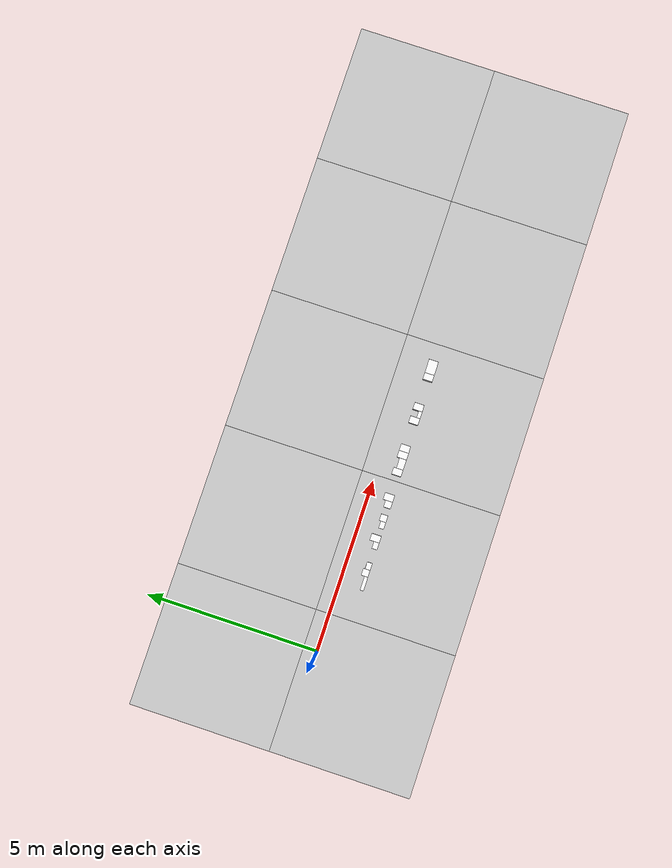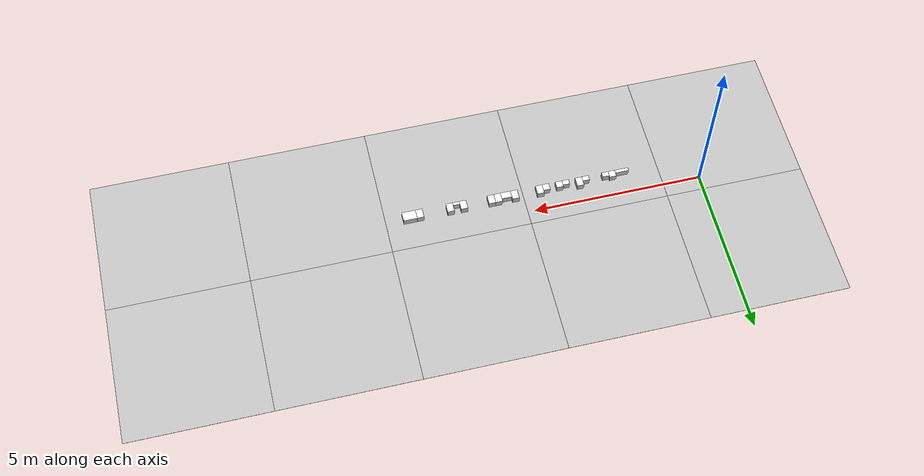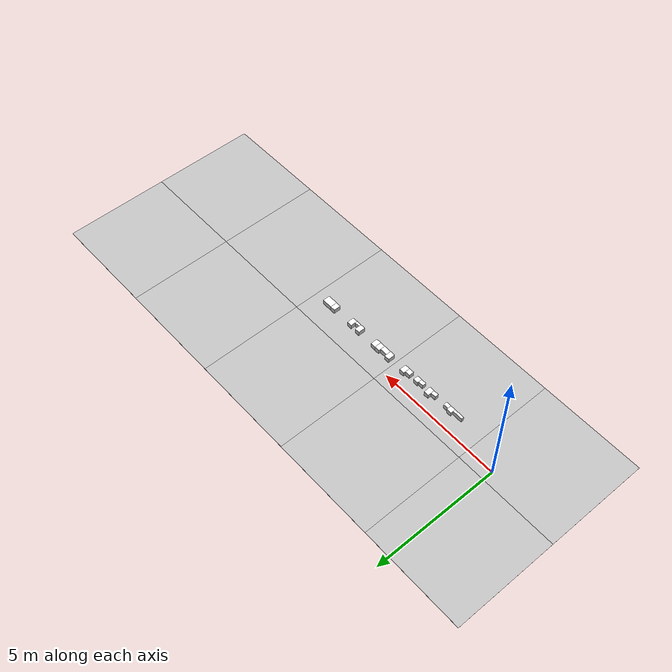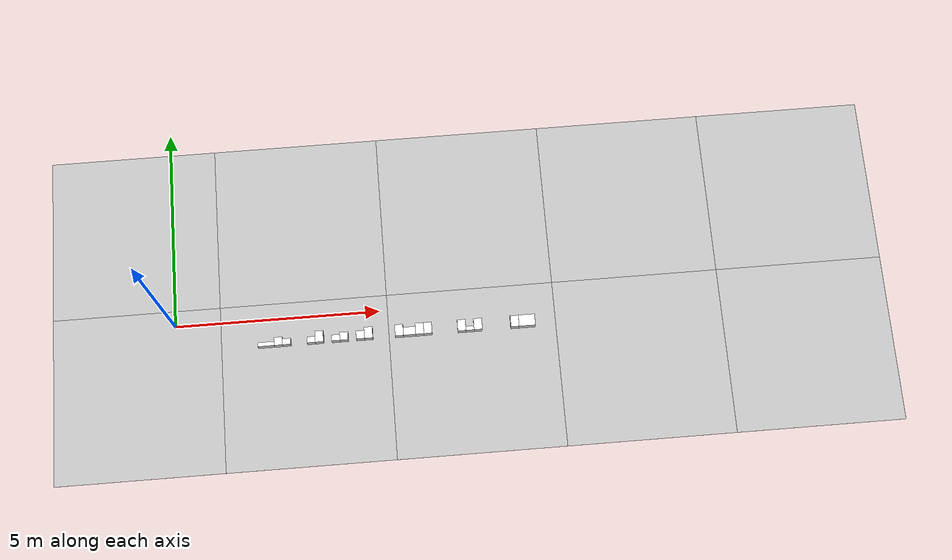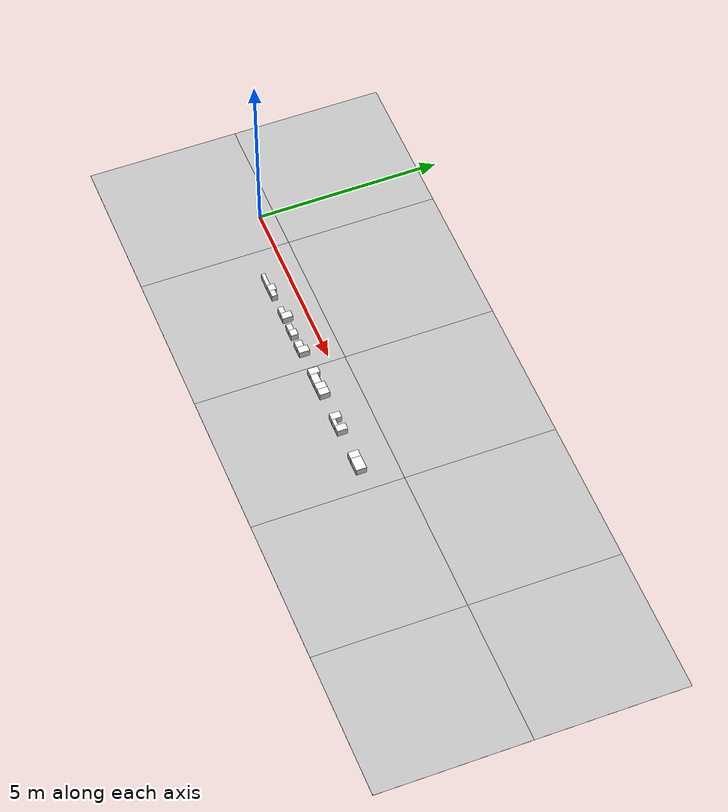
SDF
<sdf version='1.6'><world name='default'>
    <light name='sun_light' type='directional'>
      <pose frame=''>0 0 10 0 -0 0</pose>
      <diffuse>0.5 0.5 0.5 1</diffuse>
      <specular>0.1 0.1 0.1 1</specular>
      <direction>0.1 0.1 -0.9</direction>
      <attenuation>
        <range>20</range>
        <constant>0.5</constant>
        <linear>0.01</linear>
        <quadratic>0.001</quadratic>
      </attenuation>
      <cast_shadows>1</cast_shadows>
    </light>

    <model name='Tile/0-0'>
      <static>1</static>
      <link name='link'>
        <collision name='collision'>
          <geometry>
            <plane>
              <normal>0 0 1</normal>
              <size>4.096 4.096</size>
            </plane>
          </geometry>
          <surface>
            <friction>
              <ode>
                <mu>100</mu>
                <mu2>50</mu2>
              </ode>
              <torsional>
                <ode/>
              </torsional>
            </friction>
            <contact>
              <ode/>
            </contact>
            <bounce/>
          </surface>
          <max_contacts>10</max_contacts>
        </collision>
        <visual name='visual'>
          <cast_shadows>0</cast_shadows>
          <geometry>
            <plane>
              <normal>0 0 1</normal>
              <size>4.096 4.096</size>
            </plane>
          </geometry>
          <material>
            <script>
              <uri>file://materials/scripts</uri>
              <uri>file://materials/textures</uri>
              <name>Tile/aa44efc093d15b0d016b671cb8dad8b9b5925cd42bc6b331ef31decf4ba6863e</name>
            </script>
          </material>
        </visual>
        <self_collide>0</self_collide>
        <enable_wind>0</enable_wind>
        <kinematic>0</kinematic>
      </link>
      <pose frame=''>-0.952 -1.6520000000000001 0 0 -0 0</pose>
    </model>

    <model name='Tile/0-1'>
      <static>1</static>
      <link name='link'>
        <collision name='collision'>
          <geometry>
            <plane>
              <normal>0 0 1</normal>
              <size>4.096 4.096</size>
            </plane>
          </geometry>
          <surface>
            <friction>
              <ode>
                <mu>100</mu>
                <mu2>50</mu2>
              </ode>
              <torsional>
                <ode/>
              </torsional>
            </friction>
            <contact>
              <ode/>
            </contact>
            <bounce/>
          </surface>
          <max_contacts>10</max_contacts>
        </collision>
        <visual name='visual'>
          <cast_shadows>0</cast_shadows>
          <geometry>
            <plane>
              <normal>0 0 1</normal>
              <size>4.096 4.096</size>
            </plane>
          </geometry>
          <material>
            <script>
              <uri>file://materials/scripts</uri>
              <uri>file://materials/textures</uri>
              <name>Tile/6681b896b1587d54cb69aadeb5fb7247b4d6d500490292053e67105ac88ca889</name>
            </script>
          </material>
        </visual>
        <self_collide>0</self_collide>
        <enable_wind>0</enable_wind>
        <kinematic>0</kinematic>
      </link>
      <pose frame=''>-0.952 2.444 0 0 -0 0</pose>
    </model>

    <model name='Tile/1-0'>
      <static>1</static>
      <link name='link'>
        <collision name='collision'>
          <geometry>
            <plane>
              <normal>0 0 1</normal>
              <size>4.096 4.096</size>
            </plane>
          </geometry>
          <surface>
            <friction>
              <ode>
                <mu>100</mu>
                <mu2>50</mu2>
              </ode>
              <torsional>
                <ode/>
              </torsional>
            </friction>
            <contact>
              <ode/>
            </contact>
            <bounce/>
          </surface>
          <max_contacts>10</max_contacts>
        </collision>
        <visual name='visual'>
          <cast_shadows>0</cast_shadows>
          <geometry>
            <plane>
              <normal>0 0 1</normal>
              <size>4.096 4.096</size>
            </plane>
          </geometry>
          <material>
            <script>
              <uri>file://materials/scripts</uri>
              <uri>file://materials/textures</uri>
              <name>Tile/067768fed152a856bd9031b7e36a3f99bebca5a5b10e7e607b28bbce7ae49069</name>
            </script>
          </material>
        </visual>
        <self_collide>0</self_collide>
        <enable_wind>0</enable_wind>
        <kinematic>0</kinematic>
      </link>
      <pose frame=''>3.144 -1.6520000000000001 0 0 -0 0</pose>
    </model>

    <model name='Tile/1-1'>
      <static>1</static>
      <link name='link'>
        <collision name='collision'>
          <geometry>
            <plane>
              <normal>0 0 1</normal>
              <size>4.096 4.096</size>
            </plane>
          </geometry>
          <surface>
            <friction>
              <ode>
                <mu>100</mu>
                <mu2>50</mu2>
              </ode>
              <torsional>
                <ode/>
              </torsional>
            </friction>
            <contact>
              <ode/>
            </contact>
            <bounce/>
          </surface>
          <max_contacts>10</max_contacts>
        </collision>
        <visual name='visual'>
          <cast_shadows>0</cast_shadows>
          <geometry>
            <plane>
              <normal>0 0 1</normal>
              <size>4.096 4.096</size>
            </plane>
          </geometry>
          <material>
            <script>
              <uri>file://materials/scripts</uri>
              <uri>file://materials/textures</uri>
              <name>Tile/13957a6de1f2afce18d7f1f64dacc2f21295e26ccf498256b0e1a51002cd5706</name>
            </script>
          </material>
        </visual>
        <self_collide>0</self_collide>
        <enable_wind>0</enable_wind>
        <kinematic>0</kinematic>
      </link>
      <pose frame=''>3.144 2.444 0 0 -0 0</pose>
    </model>

    <model name='Tile/2-0'>
      <static>1</static>
      <link name='link'>
        <collision name='collision'>
          <geometry>
            <plane>
              <normal>0 0 1</normal>
              <size>4.096 4.096</size>
            </plane>
          </geometry>
          <surface>
            <friction>
              <ode>
                <mu>100</mu>
                <mu2>50</mu2>
              </ode>
              <torsional>
                <ode/>
              </torsional>
            </friction>
            <contact>
              <ode/>
            </contact>
            <bounce/>
          </surface>
          <max_contacts>10</max_contacts>
        </collision>
        <visual name='visual'>
          <cast_shadows>0</cast_shadows>
          <geometry>
            <plane>
              <normal>0 0 1</normal>
              <size>4.096 4.096</size>
            </plane>
          </geometry>
          <material>
            <script>
              <uri>file://materials/scripts</uri>
              <uri>file://materials/textures</uri>
              <name>Tile/31910db87828066e4d83b3765506735c1ba0569ae206dd3eb5cb4004fe165efc</name>
            </script>
          </material>
        </visual>
        <self_collide>0</self_collide>
        <enable_wind>0</enable_wind>
        <kinematic>0</kinematic>
      </link>
      <pose frame=''>7.24 -1.6520000000000001 0 0 -0 0</pose>
    </model>

    <model name='Tile/2-1'>
      <static>1</static>
      <link name='link'>
        <collision name='collision'>
          <geometry>
            <plane>
              <normal>0 0 1</normal>
              <size>4.096 4.096</size>
            </plane>
          </geometry>
          <surface>
            <friction>
              <ode>
                <mu>100</mu>
                <mu2>50</mu2>
              </ode>
              <torsional>
                <ode/>
              </torsional>
            </friction>
            <contact>
              <ode/>
            </contact>
            <bounce/>
          </surface>
          <max_contacts>10</max_contacts>
        </collision>
        <visual name='visual'>
          <cast_shadows>0</cast_shadows>
          <geometry>
            <plane>
              <normal>0 0 1</normal>
              <size>4.096 4.096</size>
            </plane>
          </geometry>
          <material>
            <script>
              <uri>file://materials/scripts</uri>
              <uri>file://materials/textures</uri>
              <name>Tile/13957a6de1f2afce18d7f1f64dacc2f21295e26ccf498256b0e1a51002cd5706</name>
            </script>
          </material>
        </visual>
        <self_collide>0</self_collide>
        <enable_wind>0</enable_wind>
        <kinematic>0</kinematic>
      </link>
      <pose frame=''>7.24 2.444 0 0 -0 0</pose>
    </model>

    <model name='Tile/3-0'>
      <static>1</static>
      <link name='link'>
        <collision name='collision'>
          <geometry>
            <plane>
              <normal>0 0 1</normal>
              <size>4.096 4.096</size>
            </plane>
          </geometry>
          <surface>
            <friction>
              <ode>
                <mu>100</mu>
                <mu2>50</mu2>
              </ode>
              <torsional>
                <ode/>
              </torsional>
            </friction>
            <contact>
              <ode/>
            </contact>
            <bounce/>
          </surface>
          <max_contacts>10</max_contacts>
        </collision>
        <visual name='visual'>
          <cast_shadows>0</cast_shadows>
          <geometry>
            <plane>
              <normal>0 0 1</normal>
              <size>4.096 4.096</size>
            </plane>
          </geometry>
          <material>
            <script>
              <uri>file://materials/scripts</uri>
              <uri>file://materials/textures</uri>
              <name>Tile/abe61641e72e42510ec0c33382329821aa0ffdabd8bdd301795f6aacd2568930</name>
            </script>
          </material>
        </visual>
        <self_collide>0</self_collide>
        <enable_wind>0</enable_wind>
        <kinematic>0</kinematic>
      </link>
      <pose frame=''>11.336 -1.6520000000000001 0 0 -0 0</pose>
    </model>

    <model name='Tile/3-1'>
      <static>1</static>
      <link name='link'>
        <collision name='collision'>
          <geometry>
            <plane>
              <normal>0 0 1</normal>
              <size>4.096 4.096</size>
            </plane>
          </geometry>
          <surface>
            <friction>
              <ode>
                <mu>100</mu>
                <mu2>50</mu2>
              </ode>
              <torsional>
                <ode/>
              </torsional>
            </friction>
            <contact>
              <ode/>
            </contact>
            <bounce/>
          </surface>
          <max_contacts>10</max_contacts>
        </collision>
        <visual name='visual'>
          <cast_shadows>0</cast_shadows>
          <geometry>
            <plane>
              <normal>0 0 1</normal>
              <size>4.096 4.096</size>
            </plane>
          </geometry>
          <material>
            <script>
              <uri>file://materials/scripts</uri>
              <uri>file://materials/textures</uri>
              <name>Tile/9a638098c074a6a28d2b802bd76e24a7c94687fec106f022fc197313878202a5</name>
            </script>
          </material>
        </visual>
        <self_collide>0</self_collide>
        <enable_wind>0</enable_wind>
        <kinematic>0</kinematic>
      </link>
      <pose frame=''>11.336 2.444 0 0 -0 0</pose>
    </model>

    <model name='Tile/4-0'>
      <static>1</static>
      <link name='link'>
        <collision name='collision'>
          <geometry>
            <plane>
              <normal>0 0 1</normal>
              <size>4.096 4.096</size>
            </plane>
          </geometry>
          <surface>
            <friction>
              <ode>
                <mu>100</mu>
                <mu2>50</mu2>
              </ode>
              <torsional>
                <ode/>
              </torsional>
            </friction>
            <contact>
              <ode/>
            </contact>
            <bounce/>
          </surface>
          <max_contacts>10</max_contacts>
        </collision>
        <visual name='visual'>
          <cast_shadows>0</cast_shadows>
          <geometry>
            <plane>
              <normal>0 0 1</normal>
              <size>4.096 4.096</size>
            </plane>
          </geometry>
          <material>
            <script>
              <uri>file://materials/scripts</uri>
              <uri>file://materials/textures</uri>
              <name>Tile/5eab350b8220ac9944dbdfa4ac3288c7c17e24c3bf5df0dfcf6173d64dae00a1</name>
            </script>
          </material>
        </visual>
        <self_collide>0</self_collide>
        <enable_wind>0</enable_wind>
        <kinematic>0</kinematic>
      </link>
      <pose frame=''>15.431999999999999 -1.6520000000000001 0 0 -0 0</pose>
    </model>

    <model name='Tile/4-1'>
      <static>1</static>
      <link name='link'>
        <collision name='collision'>
          <geometry>
            <plane>
              <normal>0 0 1</normal>
              <size>4.096 4.096</size>
            </plane>
          </geometry>
          <surface>
            <friction>
              <ode>
                <mu>100</mu>
                <mu2>50</mu2>
              </ode>
              <torsional>
                <ode/>
              </torsional>
            </friction>
            <contact>
              <ode/>
            </contact>
            <bounce/>
          </surface>
          <max_contacts>10</max_contacts>
        </collision>
        <visual name='visual'>
          <cast_shadows>0</cast_shadows>
          <geometry>
            <plane>
              <normal>0 0 1</normal>
              <size>4.096 4.096</size>
            </plane>
          </geometry>
          <material>
            <script>
              <uri>file://materials/scripts</uri>
              <uri>file://materials/textures</uri>
              <name>Tile/5eab350b8220ac9944dbdfa4ac3288c7c17e24c3bf5df0dfcf6173d64dae00a1</name>
            </script>
          </material>
        </visual>
        <self_collide>0</self_collide>
        <enable_wind>0</enable_wind>
        <kinematic>0</kinematic>
      </link>
      <pose frame=''>15.431999999999999 2.444 0 0 -0 0</pose>
    </model>

    <model name='Obstacle/-5/0'>
      <pose frame=''>2.2 -0.6499999999999999 0.1 0 0 -0.0</pose>
      <link name='link'>
        <inertial>
          <mass>10</mass>
          <inertia>
            <ixx>0.166667</ixx>
            <ixy>0</ixy>
            <ixz>0</ixz>
            <iyy>0.166667</iyy>
            <iyz>0</iyz>
            <izz>0.166667</izz>
          </inertia>
        </inertial>
        <collision name='collision'>
          <geometry>
            <box>
              <size>0.4 0.1 0.2</size>
            </box>
          </geometry>
          <max_contacts>10</max_contacts>
          <surface>
            <contact>
              <ode/>
            </contact>
            <bounce/>
            <friction>
              <torsional>
                <ode/>
              </torsional>
              <ode/>
            </friction>
          </surface>
        </collision>
        <visual name='visual'>
          <geometry>
            <box>
              <size>0.4 0.1 0.2</size>
            </box>
          </geometry>
          <material>
            <script>
              <name>Gazebo/White</name>
              <uri>file://media/materials/scripts/gazebo.material</uri>
            </script>
          </material>
        </visual>
        <self_collide>0</self_collide>
        <enable_wind>0</enable_wind>
        <kinematic>0</kinematic>
      </link>
    </model>

    <model name='Obstacle/-9/0'>
      <pose frame=''>2.5 -0.6 0.1 0 0 -0.0</pose>
      <link name='link'>
        <inertial>
          <mass>10</mass>
          <inertia>
            <ixx>0.166667</ixx>
            <ixy>0</ixy>
            <ixz>0</ixz>
            <iyy>0.166667</iyy>
            <iyz>0</iyz>
            <izz>0.166667</izz>
          </inertia>
        </inertial>
        <collision name='collision'>
          <geometry>
            <box>
              <size>0.2 0.2 0.2</size>
            </box>
          </geometry>
          <max_contacts>10</max_contacts>
          <surface>
            <contact>
              <ode/>
            </contact>
            <bounce/>
            <friction>
              <torsional>
                <ode/>
              </torsional>
              <ode/>
            </friction>
          </surface>
        </collision>
        <visual name='visual'>
          <geometry>
            <box>
              <size>0.2 0.2 0.2</size>
            </box>
          </geometry>
          <material>
            <script>
              <name>Gazebo/White</name>
              <uri>file://media/materials/scripts/gazebo.material</uri>
            </script>
          </material>
        </visual>
        <self_collide>0</self_collide>
        <enable_wind>0</enable_wind>
        <kinematic>0</kinematic>
      </link>
    </model>

    <model name='Obstacle/-13/0'>
      <pose frame=''>2.7 -0.625 0.1 0 0 -0.0</pose>
      <link name='link'>
        <inertial>
          <mass>10</mass>
          <inertia>
            <ixx>0.166667</ixx>
            <ixy>0</ixy>
            <ixz>0</ixz>
            <iyy>0.166667</iyy>
            <iyz>0</iyz>
            <izz>0.166667</izz>
          </inertia>
        </inertial>
        <collision name='collision'>
          <geometry>
            <box>
              <size>0.2 0.15 0.2</size>
            </box>
          </geometry>
          <max_contacts>10</max_contacts>
          <surface>
            <contact>
              <ode/>
            </contact>
            <bounce/>
            <friction>
              <torsional>
                <ode/>
              </torsional>
              <ode/>
            </friction>
          </surface>
        </collision>
        <visual name='visual'>
          <geometry>
            <box>
              <size>0.2 0.15 0.2</size>
            </box>
          </geometry>
          <material>
            <script>
              <name>Gazebo/White</name>
              <uri>file://media/materials/scripts/gazebo.material</uri>
            </script>
          </material>
        </visual>
        <self_collide>0</self_collide>
        <enable_wind>0</enable_wind>
        <kinematic>0</kinematic>
      </link>
    </model>

    <model name='Obstacle/-20/0'>
      <pose frame=''>3.3000000000000003 -0.625 0.1 0 0 -0.0</pose>
      <link name='link'>
        <inertial>
          <mass>10</mass>
          <inertia>
            <ixx>0.166667</ixx>
            <ixy>0</ixy>
            <ixz>0</ixz>
            <iyy>0.166667</iyy>
            <iyz>0</iyz>
            <izz>0.166667</izz>
          </inertia>
        </inertial>
        <collision name='collision'>
          <geometry>
            <box>
              <size>0.2 0.15 0.2</size>
            </box>
          </geometry>
          <max_contacts>10</max_contacts>
          <surface>
            <contact>
              <ode/>
            </contact>
            <bounce/>
            <friction>
              <torsional>
                <ode/>
              </torsional>
              <ode/>
            </friction>
          </surface>
        </collision>
        <visual name='visual'>
          <geometry>
            <box>
              <size>0.2 0.15 0.2</size>
            </box>
          </geometry>
          <material>
            <script>
              <name>Gazebo/White</name>
              <uri>file://media/materials/scripts/gazebo.material</uri>
            </script>
          </material>
        </visual>
        <self_collide>0</self_collide>
        <enable_wind>0</enable_wind>
        <kinematic>0</kinematic>
      </link>
    </model>

    <model name='Obstacle/-24/0'>
      <pose frame=''>3.5000000000000004 -0.5599999999999999 0.1 0 0 -0.0</pose>
      <link name='link'>
        <inertial>
          <mass>10</mass>
          <inertia>
            <ixx>0.166667</ixx>
            <ixy>0</ixy>
            <ixz>0</ixz>
            <iyy>0.166667</iyy>
            <iyz>0</iyz>
            <izz>0.166667</izz>
          </inertia>
        </inertial>
        <collision name='collision'>
          <geometry>
            <box>
              <size>0.2 0.28 0.2</size>
            </box>
          </geometry>
          <max_contacts>10</max_contacts>
          <surface>
            <contact>
              <ode/>
            </contact>
            <bounce/>
            <friction>
              <torsional>
                <ode/>
              </torsional>
              <ode/>
            </friction>
          </surface>
        </collision>
        <visual name='visual'>
          <geometry>
            <box>
              <size>0.2 0.28 0.2</size>
            </box>
          </geometry>
          <material>
            <script>
              <name>Gazebo/White</name>
              <uri>file://media/materials/scripts/gazebo.material</uri>
            </script>
          </material>
        </visual>
        <self_collide>0</self_collide>
        <enable_wind>0</enable_wind>
        <kinematic>0</kinematic>
      </link>
    </model>

    <model name='Obstacle/-31/0'>
      <pose frame=''>3.900000000000001 -0.625 0.1 0 0 -0.0</pose>
      <link name='link'>
        <inertial>
          <mass>10</mass>
          <inertia>
            <ixx>0.166667</ixx>
            <ixy>0</ixy>
            <ixz>0</ixz>
            <iyy>0.166667</iyy>
            <iyz>0</iyz>
            <izz>0.166667</izz>
          </inertia>
        </inertial>
        <collision name='collision'>
          <geometry>
            <box>
              <size>0.2 0.15 0.2</size>
            </box>
          </geometry>
          <max_contacts>10</max_contacts>
          <surface>
            <contact>
              <ode/>
            </contact>
            <bounce/>
            <friction>
              <torsional>
                <ode/>
              </torsional>
              <ode/>
            </friction>
          </surface>
        </collision>
        <visual name='visual'>
          <geometry>
            <box>
              <size>0.2 0.15 0.2</size>
            </box>
          </geometry>
          <material>
            <script>
              <name>Gazebo/White</name>
              <uri>file://media/materials/scripts/gazebo.material</uri>
            </script>
          </material>
        </visual>
        <self_collide>0</self_collide>
        <enable_wind>0</enable_wind>
        <kinematic>0</kinematic>
      </link>
    </model>

    <model name='Obstacle/-35/0'>
      <pose frame=''>4.1000000000000005 -0.6 0.1 0 0 -0.0</pose>
      <link name='link'>
        <inertial>
          <mass>10</mass>
          <inertia>
            <ixx>0.166667</ixx>
            <ixy>0</ixy>
            <ixz>0</ixz>
            <iyy>0.166667</iyy>
            <iyz>0</iyz>
            <izz>0.166667</izz>
          </inertia>
        </inertial>
        <collision name='collision'>
          <geometry>
            <box>
              <size>0.2 0.2 0.2</size>
            </box>
          </geometry>
          <max_contacts>10</max_contacts>
          <surface>
            <contact>
              <ode/>
            </contact>
            <bounce/>
            <friction>
              <torsional>
                <ode/>
              </torsional>
              <ode/>
            </friction>
          </surface>
        </collision>
        <visual name='visual'>
          <geometry>
            <box>
              <size>0.2 0.2 0.2</size>
            </box>
          </geometry>
          <material>
            <script>
              <name>Gazebo/White</name>
              <uri>file://media/materials/scripts/gazebo.material</uri>
            </script>
          </material>
        </visual>
        <self_collide>0</self_collide>
        <enable_wind>0</enable_wind>
        <kinematic>0</kinematic>
      </link>
    </model>

    <model name='Obstacle/-42/0'>
      <pose frame=''>4.500000000000001 -0.6 0.1 0 0 -0.0</pose>
      <link name='link'>
        <inertial>
          <mass>10</mass>
          <inertia>
            <ixx>0.166667</ixx>
            <ixy>0</ixy>
            <ixz>0</ixz>
            <iyy>0.166667</iyy>
            <iyz>0</iyz>
            <izz>0.166667</izz>
          </inertia>
        </inertial>
        <collision name='collision'>
          <geometry>
            <box>
              <size>0.2 0.2 0.2</size>
            </box>
          </geometry>
          <max_contacts>10</max_contacts>
          <surface>
            <contact>
              <ode/>
            </contact>
            <bounce/>
            <friction>
              <torsional>
                <ode/>
              </torsional>
              <ode/>
            </friction>
          </surface>
        </collision>
        <visual name='visual'>
          <geometry>
            <box>
              <size>0.2 0.2 0.2</size>
            </box>
          </geometry>
          <material>
            <script>
              <name>Gazebo/White</name>
              <uri>file://media/materials/scripts/gazebo.material</uri>
            </script>
          </material>
        </visual>
        <self_collide>0</self_collide>
        <enable_wind>0</enable_wind>
        <kinematic>0</kinematic>
      </link>
    </model>

    <model name='Obstacle/-46/0'>
      <pose frame=''>4.700000000000001 -0.5599999999999999 0.1 0 0 -0.0</pose>
      <link name='link'>
        <inertial>
          <mass>10</mass>
          <inertia>
            <ixx>0.166667</ixx>
            <ixy>0</ixy>
            <ixz>0</ixz>
            <iyy>0.166667</iyy>
            <iyz>0</iyz>
            <izz>0.166667</izz>
          </inertia>
        </inertial>
        <collision name='collision'>
          <geometry>
            <box>
              <size>0.2 0.28 0.2</size>
            </box>
          </geometry>
          <max_contacts>10</max_contacts>
          <surface>
            <contact>
              <ode/>
            </contact>
            <bounce/>
            <friction>
              <torsional>
                <ode/>
              </torsional>
              <ode/>
            </friction>
          </surface>
        </collision>
        <visual name='visual'>
          <geometry>
            <box>
              <size>0.2 0.28 0.2</size>
            </box>
          </geometry>
          <material>
            <script>
              <name>Gazebo/White</name>
              <uri>file://media/materials/scripts/gazebo.material</uri>
            </script>
          </material>
        </visual>
        <self_collide>0</self_collide>
        <enable_wind>0</enable_wind>
        <kinematic>0</kinematic>
      </link>
    </model>

    <model name='Obstacle/-53/0'>
      <pose frame=''>5.450000000000001 -0.5599999999999999 0.1 0 0 -0.0</pose>
      <link name='link'>
        <inertial>
          <mass>10</mass>
          <inertia>
            <ixx>0.166667</ixx>
            <ixy>0</ixy>
            <ixz>0</ixz>
            <iyy>0.166667</iyy>
            <iyz>0</iyz>
            <izz>0.166667</izz>
          </inertia>
        </inertial>
        <collision name='collision'>
          <geometry>
            <box>
              <size>0.2 0.28 0.2</size>
            </box>
          </geometry>
          <max_contacts>10</max_contacts>
          <surface>
            <contact>
              <ode/>
            </contact>
            <bounce/>
            <friction>
              <torsional>
                <ode/>
              </torsional>
              <ode/>
            </friction>
          </surface>
        </collision>
        <visual name='visual'>
          <geometry>
            <box>
              <size>0.2 0.28 0.2</size>
            </box>
          </geometry>
          <material>
            <script>
              <name>Gazebo/White</name>
              <uri>file://media/materials/scripts/gazebo.material</uri>
            </script>
          </material>
        </visual>
        <self_collide>0</self_collide>
        <enable_wind>0</enable_wind>
        <kinematic>0</kinematic>
      </link>
    </model>

    <model name='Obstacle/-57/0'>
      <pose frame=''>5.700000000000002 -0.6 0.1 0 0 -0.0</pose>
      <link name='link'>
        <inertial>
          <mass>10</mass>
          <inertia>
            <ixx>0.166667</ixx>
            <ixy>0</ixy>
            <ixz>0</ixz>
            <iyy>0.166667</iyy>
            <iyz>0</iyz>
            <izz>0.166667</izz>
          </inertia>
        </inertial>
        <collision name='collision'>
          <geometry>
            <box>
              <size>0.3 0.2 0.2</size>
            </box>
          </geometry>
          <max_contacts>10</max_contacts>
          <surface>
            <contact>
              <ode/>
            </contact>
            <bounce/>
            <friction>
              <torsional>
                <ode/>
              </torsional>
              <ode/>
            </friction>
          </surface>
        </collision>
        <visual name='visual'>
          <geometry>
            <box>
              <size>0.3 0.2 0.2</size>
            </box>
          </geometry>
          <material>
            <script>
              <name>Gazebo/White</name>
              <uri>file://media/materials/scripts/gazebo.material</uri>
            </script>
          </material>
        </visual>
        <self_collide>0</self_collide>
        <enable_wind>0</enable_wind>
        <kinematic>0</kinematic>
      </link>
    </model>

    <model name='Obstacle/-61/0'>
      <pose frame=''>5.950000000000001 -0.5599999999999999 0.1 0 0 -0.0</pose>
      <link name='link'>
        <inertial>
          <mass>10</mass>
          <inertia>
            <ixx>0.166667</ixx>
            <ixy>0</ixy>
            <ixz>0</ixz>
            <iyy>0.166667</iyy>
            <iyz>0</iyz>
            <izz>0.166667</izz>
          </inertia>
        </inertial>
        <collision name='collision'>
          <geometry>
            <box>
              <size>0.2 0.28 0.2</size>
            </box>
          </geometry>
          <max_contacts>10</max_contacts>
          <surface>
            <contact>
              <ode/>
            </contact>
            <bounce/>
            <friction>
              <torsional>
                <ode/>
              </torsional>
              <ode/>
            </friction>
          </surface>
        </collision>
        <visual name='visual'>
          <geometry>
            <box>
              <size>0.2 0.28 0.2</size>
            </box>
          </geometry>
          <material>
            <script>
              <name>Gazebo/White</name>
              <uri>file://media/materials/scripts/gazebo.material</uri>
            </script>
          </material>
        </visual>
        <self_collide>0</self_collide>
        <enable_wind>0</enable_wind>
        <kinematic>0</kinematic>
      </link>
    </model>

    <model name='Obstacle/-65/0'>
      <pose frame=''>6.150000000000001 -0.5599999999999999 0.1 0 0 -0.0</pose>
      <link name='link'>
        <inertial>
          <mass>10</mass>
          <inertia>
            <ixx>0.166667</ixx>
            <ixy>0</ixy>
            <ixz>0</ixz>
            <iyy>0.166667</iyy>
            <iyz>0</iyz>
            <izz>0.166667</izz>
          </inertia>
        </inertial>
        <collision name='collision'>
          <geometry>
            <box>
              <size>0.2 0.28 0.2</size>
            </box>
          </geometry>
          <max_contacts>10</max_contacts>
          <surface>
            <contact>
              <ode/>
            </contact>
            <bounce/>
            <friction>
              <torsional>
                <ode/>
              </torsional>
              <ode/>
            </friction>
          </surface>
        </collision>
        <visual name='visual'>
          <geometry>
            <box>
              <size>0.2 0.28 0.2</size>
            </box>
          </geometry>
          <material>
            <script>
              <name>Gazebo/White</name>
              <uri>file://media/materials/scripts/gazebo.material</uri>
            </script>
          </material>
        </visual>
        <self_collide>0</self_collide>
        <enable_wind>0</enable_wind>
        <kinematic>0</kinematic>
      </link>
    </model>

    <model name='Obstacle/-72/0'>
      <pose frame=''>6.980000000000001 -0.5599999999999999 0.1 0 0 -0.0</pose>
      <link name='link'>
        <inertial>
          <mass>10</mass>
          <inertia>
            <ixx>0.166667</ixx>
            <ixy>0</ixy>
            <ixz>0</ixz>
            <iyy>0.166667</iyy>
            <iyz>0</iyz>
            <izz>0.166667</izz>
          </inertia>
        </inertial>
        <collision name='collision'>
          <geometry>
            <box>
              <size>0.2 0.28 0.2</size>
            </box>
          </geometry>
          <max_contacts>10</max_contacts>
          <surface>
            <contact>
              <ode/>
            </contact>
            <bounce/>
            <friction>
              <torsional>
                <ode/>
              </torsional>
              <ode/>
            </friction>
          </surface>
        </collision>
        <visual name='visual'>
          <geometry>
            <box>
              <size>0.2 0.28 0.2</size>
            </box>
          </geometry>
          <material>
            <script>
              <name>Gazebo/White</name>
              <uri>file://media/materials/scripts/gazebo.material</uri>
            </script>
          </material>
        </visual>
        <self_collide>0</self_collide>
        <enable_wind>0</enable_wind>
        <kinematic>0</kinematic>
      </link>
    </model>

    <model name='Obstacle/-76/0'>
      <pose frame=''>7.1800000000000015 -0.6499999999999999 0.1 0 0 -0.0</pose>
      <link name='link'>
        <inertial>
          <mass>10</mass>
          <inertia>
            <ixx>0.166667</ixx>
            <ixy>0</ixy>
            <ixz>0</ixz>
            <iyy>0.166667</iyy>
            <iyz>0</iyz>
            <izz>0.166667</izz>
          </inertia>
        </inertial>
        <collision name='collision'>
          <geometry>
            <box>
              <size>0.2 0.1 0.2</size>
            </box>
          </geometry>
          <max_contacts>10</max_contacts>
          <surface>
            <contact>
              <ode/>
            </contact>
            <bounce/>
            <friction>
              <torsional>
                <ode/>
              </torsional>
              <ode/>
            </friction>
          </surface>
        </collision>
        <visual name='visual'>
          <geometry>
            <box>
              <size>0.2 0.1 0.2</size>
            </box>
          </geometry>
          <material>
            <script>
              <name>Gazebo/White</name>
              <uri>file://media/materials/scripts/gazebo.material</uri>
            </script>
          </material>
        </visual>
        <self_collide>0</self_collide>
        <enable_wind>0</enable_wind>
        <kinematic>0</kinematic>
      </link>
    </model>

    <model name='Obstacle/-80/0'>
      <pose frame=''>7.380000000000002 -0.5599999999999999 0.1 0 0 -0.0</pose>
      <link name='link'>
        <inertial>
          <mass>10</mass>
          <inertia>
            <ixx>0.166667</ixx>
            <ixy>0</ixy>
            <ixz>0</ixz>
            <iyy>0.166667</iyy>
            <iyz>0</iyz>
            <izz>0.166667</izz>
          </inertia>
        </inertial>
        <collision name='collision'>
          <geometry>
            <box>
              <size>0.2 0.28 0.2</size>
            </box>
          </geometry>
          <max_contacts>10</max_contacts>
          <surface>
            <contact>
              <ode/>
            </contact>
            <bounce/>
            <friction>
              <torsional>
                <ode/>
              </torsional>
              <ode/>
            </friction>
          </surface>
        </collision>
        <visual name='visual'>
          <geometry>
            <box>
              <size>0.2 0.28 0.2</size>
            </box>
          </geometry>
          <material>
            <script>
              <name>Gazebo/White</name>
              <uri>file://media/materials/scripts/gazebo.material</uri>
            </script>
          </material>
        </visual>
        <self_collide>0</self_collide>
        <enable_wind>0</enable_wind>
        <kinematic>0</kinematic>
      </link>
    </model>

    <model name='Obstacle/-87/0'>
      <pose frame=''>8.280000000000001 -0.5599999999999999 0.1 0 0 -0.0</pose>
      <link name='link'>
        <inertial>
          <mass>10</mass>
          <inertia>
            <ixx>0.166667</ixx>
            <ixy>0</ixy>
            <ixz>0</ixz>
            <iyy>0.166667</iyy>
            <iyz>0</iyz>
            <izz>0.166667</izz>
          </inertia>
        </inertial>
        <collision name='collision'>
          <geometry>
            <box>
              <size>0.2 0.28 0.2</size>
            </box>
          </geometry>
          <max_contacts>10</max_contacts>
          <surface>
            <contact>
              <ode/>
            </contact>
            <bounce/>
            <friction>
              <torsional>
                <ode/>
              </torsional>
              <ode/>
            </friction>
          </surface>
        </collision>
        <visual name='visual'>
          <geometry>
            <box>
              <size>0.2 0.28 0.2</size>
            </box>
          </geometry>
          <material>
            <script>
              <name>Gazebo/White</name>
              <uri>file://media/materials/scripts/gazebo.material</uri>
            </script>
          </material>
        </visual>
        <self_collide>0</self_collide>
        <enable_wind>0</enable_wind>
        <kinematic>0</kinematic>
      </link>
    </model>

    <model name='Obstacle/-91/0'>
      <pose frame=''>8.58 -0.5599999999999999 0.1 0 0 -0.0</pose>
      <link name='link'>
        <inertial>
          <mass>10</mass>
          <inertia>
            <ixx>0.166667</ixx>
            <ixy>0</ixy>
            <ixz>0</ixz>
            <iyy>0.166667</iyy>
            <iyz>0</iyz>
            <izz>0.166667</izz>
          </inertia>
        </inertial>
        <collision name='collision'>
          <geometry>
            <box>
              <size>0.4 0.28 0.2</size>
            </box>
          </geometry>
          <max_contacts>10</max_contacts>
          <surface>
            <contact>
              <ode/>
            </contact>
            <bounce/>
            <friction>
              <torsional>
                <ode/>
              </torsional>
              <ode/>
            </friction>
          </surface>
        </collision>
        <visual name='visual'>
          <geometry>
            <box>
              <size>0.4 0.28 0.2</size>
            </box>
          </geometry>
          <material>
            <script>
              <name>Gazebo/White</name>
              <uri>file://media/materials/scripts/gazebo.material</uri>
            </script>
          </material>
        </visual>
        <self_collide>0</self_collide>
        <enable_wind>0</enable_wind>
        <kinematic>0</kinematic>
      </link>
    </model>
    </world></sdf>
